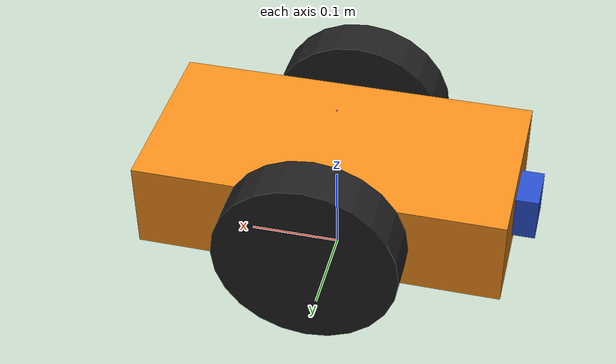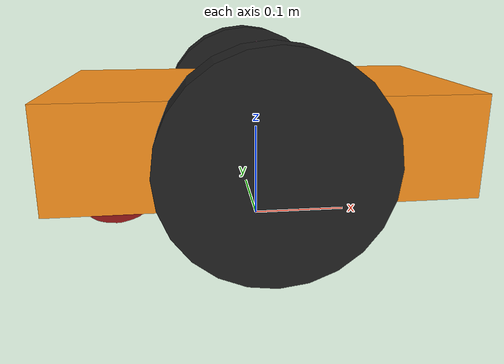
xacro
<?xml version='1.0'  ?>

<robot name="lander_detector" xmlns:xacro="http://www.ros.org/wiki/xacro">

  <xacro:property name="PI" value="3.1415926535897931"/>

  <xacro:property name="chassisHeight" value="0.1"/>
  <xacro:property name="chassisLength" value="0.4"/>
  <xacro:property name="chassisWidth" value="0.2"/>
  <xacro:property name="chassisMass" value="50"/>

  <xacro:property name="casterRadius" value="0.05"/>
  <xacro:property name="casterMass" value="5"/>

  <xacro:property name="wheelWidth" value="0.05"/>
  <xacro:property name="wheelRadius" value="0.1"/>
  <xacro:property name="wheelPos" value="0.2"/>
  <xacro:property name="wheelMass" value="5"/>

  <xacro:property name="cameraSize" value="0.05"/>
  <xacro:property name="cameraMass" value="0.1"/>

  <xacro:include filename="$(find lander_detector_description)/urdf/lander_detector.gazebo" />
  <xacro:include filename="$(find lander_detector_description)/urdf/materials.xacro" />
  <xacro:include filename="$(find lander_detector_description)/urdf/macros.xacro" />

  <link name="footprint" />

  <joint name="base_joint" type="fixed">
  <parent link="footprint"/>
  <child link="chassis"/>
  </joint>

  <link name='chassis'>
  <collision>
    <origin xyz="0 0 ${wheelRadius}" rpy="0 0 0"/>
    <geometry>
      <box size="${chassisLength} ${chassisWidth} ${chassisHeight}"/>
    </geometry>
  </collision>
  <visual>
    <origin xyz="0 0 ${wheelRadius}" rpy="0 0 0"/>
    <geometry>
      <box size="${chassisLength} ${chassisWidth} ${chassisHeight}"/>
    </geometry>
    <material name="orange"/>
  </visual>
  <inertial>
    <origin xyz="0 0 ${wheelRadius}" rpy="0 0 0"/>
    <mass value="${chassisMass}"/>
    <box_inertia m="${chassisMass}" x="${chassisLength}" y="${chassisWidth}" z="${chassisHeight}"/>
  </inertial>
</link>
<joint name="fixed" type="fixed">
  <parent link="chassis"/>
  <child link="caster_wheel"/>
</joint>

<link name="caster_wheel">
  <collision>
    <origin xyz="${casterRadius-chassisLength/2} 0 ${casterRadius-chassisHeight+wheelRadius}" rpy="0 0 0"/>
    <geometry>
      <sphere radius="${casterRadius}"/>
    </geometry>
  </collision>

  <visual>
    <origin xyz="${casterRadius-chassisLength/2} 0 ${casterRadius-chassisHeight+wheelRadius}" rpy="0 0 0"/>
    <geometry>
      <sphere radius="${casterRadius}"/>
    </geometry>
    <material name="red"/>
  </visual>

  <inertial>
    <origin xyz="${casterRadius-chassisLength/2} 0 ${casterRadius-chassisHeight+wheelRadius}" rpy="0 0 0"/>
    <mass value="${casterMass}"/>
    <sphere_inertia m="${casterMass}" r="${casterRadius}"/>
  </inertial>
</link>

<!-- Wheels -->
<wheel lr="left" tY="1" />
<wheel lr="right" tY="-1"/>

<!-- Camera -->
<link name="camera">
  <collision>
    <origin xyz="0 0 0" rpy="0 0 0 "/>
    <geometry>
      <box size="${cameraSize} ${cameraSize} ${cameraSize}"/>
    </geometry>
  </collision>
  <visual>
    <origin xyz="0 0 0" rpy="0 0 0"/>
    <geometry>
      <box size="${cameraSize} ${cameraSize} ${cameraSize}"/>
    </geometry>
    <material name="blue"/>
  </visual>
  <inertial>
    <mass value="${cameraMass}" />
    <origin xyz="0 0 0" rpy="0 0 0 "/>
    <box_inertia m="${cameraMass}" x="${cameraSize}" y="${cameraSize}" z="${cameraSize}" />
  </inertial>
</link>

  <joint name="camera_joint" type="fixed">
    <origin xyz="-${chassisLength/2} 0 ${chassisHeight}" rpy=" ${PI} ${PI} 0 "/>
    <parent link="chassis"/>
    <child link="camera"/>
  </joint>

<!-- IMU -->
<link name="imu">
 <inertial>
   <mass value="0.001"/>
   <origin rpy="0 0 0" xyz="0 0 0"/>
   <inertia ixx="0.0001" ixy="0" ixz="0" iyy="0.000001" iyz="0" izz="0.0001"/>
 </inertial>
 <visual>
   <origin rpy="0 0 0" xyz="0 0 0"/>
   <geometry>
     <box size="0.001 0.001 0.001"/>
   </geometry>
 </visual>
 <collision>
   <origin rpy="0 0 0" xyz="0 0 0"/>
   <geometry>
     <box size=".001 .001 .001"/>
   </geometry>
 </collision>
</link>

<joint name="imu_joint" type="fixed">
 <axis xyz="0 0 1"/>
 <origin xyz="0 0 0.19"/>
 <parent link="chassis"/>
 <child link="imu"/>
</joint>

  <!-- Hokuyo Laser -->

</robot>

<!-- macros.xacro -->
<robot>

  <macro name="cylinder_inertia" params="m r h">
    <inertia  ixx="${m*(3*r*r+h*h)/12}" ixy = "0" ixz = "0"
      iyy="${m*(3*r*r+h*h)/12}" iyz = "0"
      izz="${m*r*r/2}"
    />
  </macro>

  <macro name="box_inertia" params="m x y z">
    <inertia  ixx="${m*(y*y+z*z)/12}" ixy = "0" ixz = "0"
      iyy="${m*(x*x+z*z)/12}" iyz = "0"
      izz="${m*(x*x+z*z)/12}"
    />
  </macro>

  <macro name="sphere_inertia" params="m r">
    <inertia  ixx="${2*m*r*r/5}" ixy = "0" ixz = "0"
      iyy="${2*m*r*r/5}" iyz = "0"
      izz="${2*m*r*r/5}"
    />
  </macro>

  <macro name="wheel" params="lr tY">

  <link name="${lr}_wheel">
    <collision>
      <origin xyz="0 0 0" rpy="0 ${PI/2} ${PI/2}" />
      <geometry>
        <cylinder length="${wheelWidth}" radius="${wheelRadius}"/>
      </geometry>
    </collision>

    <visual>
      <origin xyz="0 0 0" rpy="0 ${PI/2} ${PI/2}" />
      <geometry>
        <cylinder length="${wheelWidth}" radius="${wheelRadius}"/>
      </geometry>
      <material name="black"/>
    </visual>

    <inertial>
      <origin xyz="0 0 0" rpy="0 ${PI/2} ${PI/2}" />
      <mass value="${wheelMass}"/>
      <cylinder_inertia m="${wheelMass}" r="${wheelRadius}" h="${wheelWidth}"/>
    </inertial>
  </link>

  <gazebo reference="${lr}_wheel">
    <mu1 value="1.0"/>
    <mu2 value="1.0"/>
    <kp  value="10000000.0" />
    <kd  value="1.0" />
    <fdir1 value="1 0 0"/>
    <material>Gazebo/Black</material>
  </gazebo>

  <joint name="${lr}_wheel_hinge" type="continuous">
    <parent link="chassis"/>
    <child link="${lr}_wheel"/>
    <origin xyz="${-wheelPos+chassisLength/2} ${tY*wheelWidth/2+tY*chassisWidth/2} ${wheelRadius}" rpy="0 0 0" />
    <axis xyz="0 1 0" rpy="0 0 0" />
    <limit effort="100" velocity="100"/>
    <joint_properties damping="0.0" friction="0.0"/>
  </joint>

  <transmission name="${lr}_trans">
    <type>SimpleTransmission</type>
    <joint name="${lr}_wheel_hinge">
      <hardwareInterface>EffortJointInterface</hardwareInterface>
    </joint>
    <actuator name="${lr}Motor">
      <hardwareInterface>EffortJointInterface</hardwareInterface>
      <mechanicalReduction>10</mechanicalReduction>
    </actuator>
  </transmission>

  </macro>

</robot>
